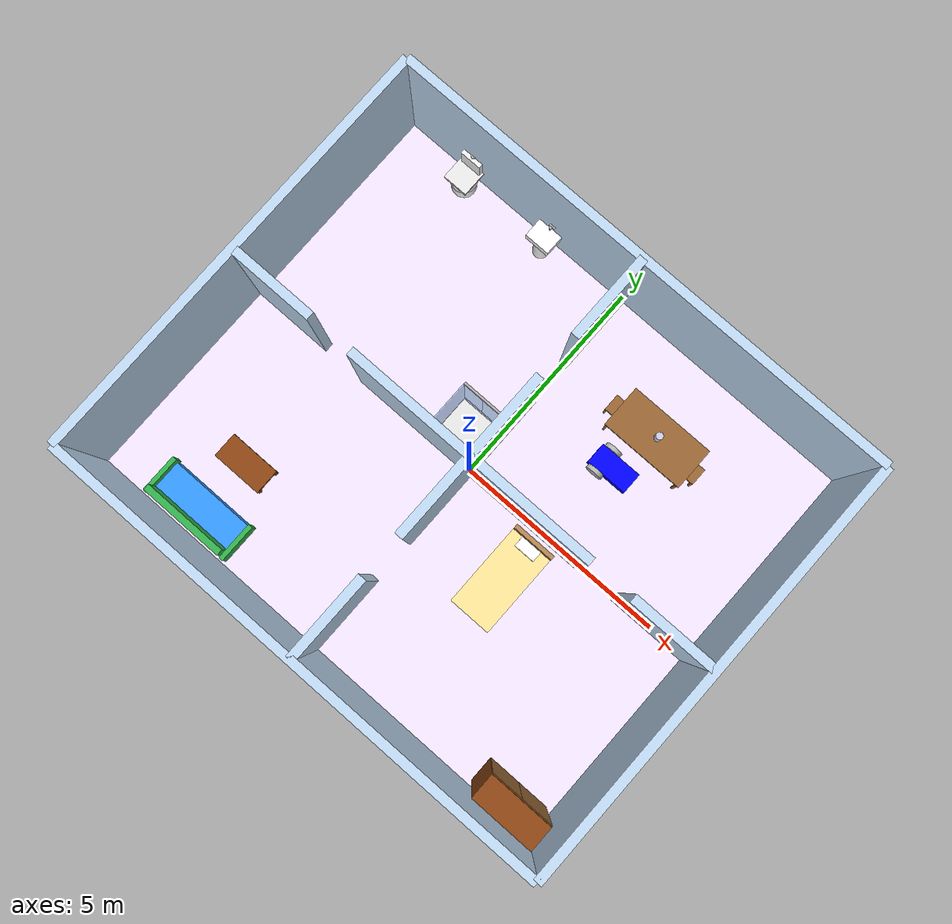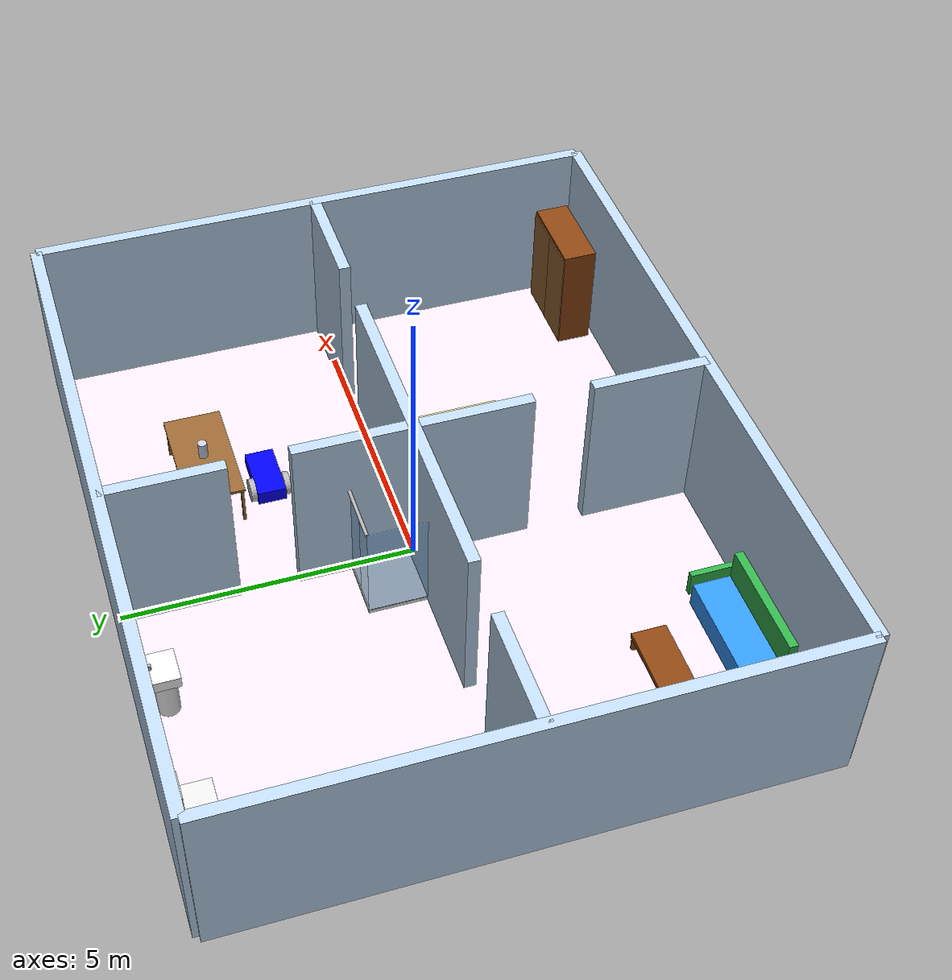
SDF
<?xml version="1.0" ?>
<sdf version="1.8">
<world name="home_world">
<include>
  <uri>file://robot.sdf</uri>
  <name>robot</name>
  <pose>2 2 0 0 0 0</pose>
</include>
  <model name="house">
    <static>true</static>
    <pose>0 0 0 0 0 0</pose>

    <!-- Floor -->
    <link name="floor">
      <pose>0 0 0.01 0 0 0</pose>
      <collision name="floor_collision">
        <geometry>
          <box>
            <size>12 10 0.02</size>
          </box>
        </geometry>
      </collision>
      <visual name="floor_visual">
        <geometry>
          <box>
            <size>12 10 0.02</size>
          </box>
        </geometry>
<material>
  <ambient>0.95 0.9 1 1</ambient>
  <diffuse>0.95 0.9 1 1</diffuse>
  <emissive>0.75 0.6 0.9 1</emissive>
</material>
      </visual>
    </link>

    <!-- Exterior Walls -->
    <!-- North wall -->
    <link name="north_wall">
      <pose>0 5 1.5 0 0 0</pose>
      <collision name="north_wall_collision">
        <geometry>
          <box>
            <size>12 0.2 3</size>
          </box>
        </geometry>
      </collision>
      <visual name="north_wall_visual">
        <geometry>
          <box>
            <size>12 0.2 3</size>
          </box>
        </geometry>
<material>
  <ambient>0.75 0.85 0.95 1</ambient>
  <diffuse>0.75 0.85 0.95 1</diffuse>
  <emissive>0.4 0.55 0.7 1</emissive>
</material>
      </visual>
    </link>

    <!-- South wall -->
    <link name="south_wall">
      <pose>0 -5 1.5 0 0 0</pose>
      <collision name="south_wall_collision">
        <geometry>
          <box>
            <size>12 0.2 3</size>
          </box>
        </geometry>
      </collision>
      <visual name="south_wall_visual">
        <geometry>
          <box>
            <size>12 0.2 3</size>
          </box>
        </geometry>
<material>
  <ambient>0.75 0.85 0.95 1</ambient>
  <diffuse>0.75 0.85 0.95 1</diffuse>
  <emissive>0.4 0.55 0.7 1</emissive>
</material>
      </visual>
    </link>

    <!-- West wall -->
    <link name="west_wall">
      <pose>-6 0 1.5 0 0 0</pose>
      <collision name="west_wall_collision">
        <geometry>
          <box>
            <size>0.2 10 3</size>
          </box>
        </geometry>
      </collision>
      <visual name="west_wall_visual">
        <geometry>
          <box>
            <size>0.2 10 3</size>
          </box>
        </geometry>
<material>
  <ambient>0.75 0.85 0.95 1</ambient>
  <diffuse>0.75 0.85 0.95 1</diffuse>
  <emissive>0.4 0.55 0.7 1</emissive>
</material>
      </visual>
    </link>

    <!-- East wall -->
    <link name="east_wall">
      <pose>6 0 1.5 0 0 0</pose>
      <collision name="east_wall_collision">
        <geometry>
          <box>
            <size>0.2 10 3</size>
          </box>
        </geometry>
      </collision>
      <visual name="east_wall_visual">
        <geometry>
          <box>
            <size>0.2 10 3</size>
          </box>
        </geometry>
<material>
  <ambient>0.75 0.85 0.95 1</ambient>
  <diffuse>0.75 0.85 0.95 1</diffuse>
  <emissive>0.4 0.55 0.7 1</emissive>
</material>
      </visual>
    </link>

    <!-- Interior Walls -->
    <!-- Vertical divider (splits house left/right) -->
<link name="vertical_divider_top_part1">
  <pose>0 4.0 1.5 0 0 0</pose>

  <collision name="vertical_divider_top_part1_collision">
    <geometry>
      <box>
        <size>0.2 2 3</size>
      </box>
    </geometry>
  </collision>

  <visual name="vertical_divider_top_part1_visual">
    <geometry>
      <box>
        <size>0.2 2 3</size>
      </box>
    </geometry>
<material>
  <ambient>0.75 0.85 0.95 1</ambient>
  <diffuse>0.75 0.85 0.95 1</diffuse>
  <emissive>0.4 0.55 0.7 1</emissive>
</material>
  </visual>
</link>
<link name="vertical_divider_top_part2">
  <pose>0 1.0 1.5 0 0 0</pose>

  <collision name="vertical_divider_top_part2_collision">
    <geometry>
      <box>
        <size>0.2 2 3</size>
      </box>
    </geometry>
  </collision>

  <visual name="vertical_divider_top_part2_visual">
    <geometry>
      <box>
        <size>0.2 2 3</size>
      </box>
    </geometry>
<material>
  <ambient>0.75 0.85 0.95 1</ambient>
  <diffuse>0.75 0.85 0.95 1</diffuse>
  <emissive>0.4 0.55 0.7 1</emissive>
</material>
  </visual>
</link>
<link name="vertical_divider_bottom_part1">
  <pose>0 -1.0 1.5 0 0 0</pose>

  <collision name="vertical_divider_bottom_part1_collision">
    <geometry>
      <box>
        <size>0.2 2 3</size>
      </box>
    </geometry>
  </collision>

  <visual name="vertical_divider_bottom_part1_visual">
    <geometry>
      <box>
        <size>0.2 2 3</size>
      </box>
    </geometry>
<material>
  <ambient>0.75 0.85 0.95 1</ambient>
  <diffuse>0.75 0.85 0.95 1</diffuse>
  <emissive>0.4 0.55 0.7 1</emissive>
</material>
  </visual>
</link>
<link name="vertical_divider_bottom_part2">
  <pose>0 -4.0 1.5 0 0 0</pose>

  <collision name="vertical_divider_bottom_part2_collision">
    <geometry>
      <box>
        <size>0.2 2 3</size>
      </box>
    </geometry>
  </collision>

  <visual name="vertical_divider_bottom_part2_visual">
    <geometry>
      <box>
        <size>0.2 2 3</size>
      </box>
    </geometry>
<material>
  <ambient>0.75 0.85 0.95 1</ambient>
  <diffuse>0.75 0.85 0.95 1</diffuse>
  <emissive>0.4 0.55 0.7 1</emissive>
</material>
  </visual>
</link>

    <!-- Horizontal divider left side (between bedroom and bathroom) -->
<link name="horizontal_divider_left_part1">
  <pose>-5 0 1.5 0 0 0</pose>

  <collision name="horizontal_divider_left_part1_collision">
    <geometry>
      <box>
        <size>2 0.2 3</size>
      </box>
    </geometry>
  </collision>

  <visual name="horizontal_divider_left_part1_visual">
    <geometry>
      <box>
        <size>2 0.2 3</size>
      </box>
    </geometry>
<material>
  <ambient>0.75 0.85 0.95 1</ambient>
  <diffuse>0.75 0.85 0.95 1</diffuse>
  <emissive>0.4 0.55 0.7 1</emissive>
</material>
  </visual>
</link>

<link name="horizontal_divider_left_part2">
  <pose>-1.5 0 1.5 0 0 0</pose>

  <collision name="horizontal_divider_left_part2_collision">
    <geometry>
      <box>
        <size>3 0.2 3</size>
      </box>
    </geometry>
  </collision>

  <visual name="horizontal_divider_left_part2_visual">
    <geometry>
      <box>
        <size>3 0.2 3</size>
      </box>
    </geometry>
<material>
  <ambient>0.75 0.85 0.95 1</ambient>
  <diffuse>0.75 0.85 0.95 1</diffuse>
  <emissive>0.4 0.55 0.7 1</emissive>
</material>
  </visual>
</link>

    <!-- Horizontal divider right side (between living room and study) -->
<link name="horizontal_divider_right_part1">
  <pose>1.5 0 1.5 0 0 0</pose>

  <collision name="horizontal_divider_right_part1_collision">
    <geometry>
      <box>
        <size>3 0.2 3</size>
      </box>
    </geometry>
  </collision>

  <visual name="horizontal_divider_right_part1_visual">
    <geometry>
      <box>
        <size>3 0.2 3</size>
      </box>
    </geometry>
<material>
  <ambient>0.75 0.85 0.95 1</ambient>
  <diffuse>0.75 0.85 0.95 1</diffuse>
  <emissive>0.4 0.55 0.7 1</emissive>
</material>
  </visual>
</link>
<link name="horizontal_divider_right_part2">
  <pose>5 0 1.5 0 0 0</pose>

  <collision name="horizontal_divider_right_part2_collision">
    <geometry>
      <box>
        <size>2 0.2 3</size>
      </box>
    </geometry>
  </collision>

  <visual name="horizontal_divider_right_part2_visual">
    <geometry>
      <box>
        <size>2 0.2 3</size>
      </box>
    </geometry>
<material>
  <ambient>0.75 0.85 0.95 1</ambient>
  <diffuse>0.75 0.85 0.95 1</diffuse>
  <emissive>0.4 0.55 0.7 1</emissive>
</material>
  </visual>
</link>

<!-- Dining Table -->
<link name="dining_table">
  <pose>2.5 3 0.75 0 0 0</pose>

  <!-- Tabletop -->
  <collision name="tabletop_collision">
    <geometry><box><size>2 1 0.05</size></box></geometry>
  </collision>
  <visual name="tabletop_visual">
    <geometry><box><size>2 1 0.05</size></box></geometry>
    <material><ambient>0.6 0.4 0.2 1</ambient><diffuse>0.6 0.4 0.2 1</diffuse></material>
  </visual>

  <!-- Table legs -->
  <collision name="leg1_collision">
    <pose>0.95 0.45 -0.375 0 0 0</pose>
    <geometry><box><size>0.05 0.05 0.75</size></box></geometry>
  </collision>
  <visual name="leg1_visual">
    <pose>0.95 0.45 -0.375 0 0 0</pose>
    <geometry><box><size>0.05 0.05 0.75</size></box></geometry>
    <material><ambient>0.6 0.4 0.2 1</ambient><diffuse>0.6 0.4 0.2 1</diffuse></material>
  </visual>

  <collision name="leg2_collision">
    <pose>0.95 -0.45 -0.375 0 0 0</pose>
    <geometry><box><size>0.05 0.05 0.75</size></box></geometry>
  </collision>
  <visual name="leg2_visual">
    <pose>0.95 -0.45 -0.375 0 0 0</pose>
    <geometry><box><size>0.05 0.05 0.75</size></box></geometry>
    <material><ambient>0.6 0.4 0.2 1</ambient><diffuse>0.6 0.4 0.2 1</diffuse></material>
  </visual>

  <collision name="leg3_collision">
    <pose>-0.95 0.45 -0.375 0 0 0</pose>
    <geometry><box><size>0.05 0.05 0.75</size></box></geometry>
  </collision>
  <visual name="leg3_visual">
    <pose>-0.95 0.45 -0.375 0 0 0</pose>
    <geometry><box><size>0.05 0.05 0.75</size></box></geometry>
    <material><ambient>0.6 0.4 0.2 1</ambient><diffuse>0.6 0.4 0.2 1</diffuse></material>
  </visual>

  <collision name="leg4_collision">
    <pose>-0.95 -0.45 -0.375 0 0 0</pose>
    <geometry><box><size>0.05 0.05 0.75</size></box></geometry>
  </collision>
  <visual name="leg4_visual">
    <pose>-0.95 -0.45 -0.375 0 0 0</pose>
    <geometry><box><size>0.05 0.05 0.75</size></box></geometry>
    <material><ambient>0.6 0.4 0.2 1</ambient><diffuse>0.6 0.4 0.2 1</diffuse></material>
  </visual>
</link>

<!-- Stool 1 -->
<link name="stool1">
  <pose>1.5 3 0.45 0 0 0</pose>

  <!-- Seat -->
  <collision name="seat_collision">
    <geometry><box><size>0.4 0.4 0.05</size></box></geometry>
  </collision>
  <visual name="seat_visual">
    <geometry><box><size>0.4 0.4 0.05</size></box></geometry>
    <material><ambient>0.6 0.4 0.2 1</ambient><diffuse>0.6 0.4 0.2 1</diffuse></material>
  </visual>

  <!-- Legs -->
  <collision name="leg1_collision">
    <pose>0.175 0.175 -0.225 0 0 0</pose>
    <geometry><box><size>0.05 0.05 0.45</size></box></geometry>
  </collision>
  <visual name="leg1_visual">
    <pose>0.175 0.175 -0.225 0 0 0</pose>
    <geometry><box><size>0.05 0.05 0.45</size></box></geometry>
    <material><ambient>0.6 0.4 0.2 1</ambient><diffuse>0.6 0.4 0.2 1</diffuse></material>
  </visual>

  <collision name="leg2_collision">
    <pose>0.175 -0.175 -0.225 0 0 0</pose>
    <geometry><box><size>0.05 0.05 0.45</size></box></geometry>
  </collision>
  <visual name="leg2_visual">
    <pose>0.175 -0.175 -0.225 0 0 0</pose>
    <geometry><box><size>0.05 0.05 0.45</size></box></geometry>
    <material><ambient>0.6 0.4 0.2 1</ambient><diffuse>0.6 0.4 0.2 1</diffuse></material>
  </visual>

  <collision name="leg3_collision">
    <pose>-0.175 0.175 -0.225 0 0 0</pose>
    <geometry><box><size>0.05 0.05 0.45</size></box></geometry>
  </collision>
  <visual name="leg3_visual">
    <pose>-0.175 0.175 -0.225 0 0 0</pose>
    <geometry><box><size>0.05 0.05 0.45</size></box></geometry>
    <material><ambient>0.6 0.4 0.2 1</ambient><diffuse>0.6 0.4 0.2 1</diffuse></material>
  </visual>

  <collision name="leg4_collision">
    <pose>-0.175 -0.175 -0.225 0 0 0</pose>
    <geometry><box><size>0.05 0.05 0.45</size></box></geometry>
  </collision>
  <visual name="leg4_visual">
    <pose>-0.175 -0.175 -0.225 0 0 0</pose>
    <geometry><box><size>0.05 0.05 0.45</size></box></geometry>
    <material><ambient>0.6 0.4 0.2 1</ambient><diffuse>0.6 0.4 0.2 1</diffuse></material>
  </visual>
</link>

<!-- Stool 2 -->
<link name="stool2">
  <pose>3.5 3 0.45 0 0 0</pose>

  <!-- Seat -->
  <collision name="seat_collision">
    <geometry><box><size>0.4 0.4 0.05</size></box></geometry>
  </collision>
  <visual name="seat_visual">
    <geometry><box><size>0.4 0.4 0.05</size></box></geometry>
    <material><ambient>0.6 0.4 0.2 1</ambient><diffuse>0.6 0.4 0.2 1</diffuse></material>
  </visual>

  <!-- Legs -->
  <collision name="leg1_collision">
    <pose>0.175 0.175 -0.225 0 0 0</pose>
    <geometry><box><size>0.05 0.05 0.45</size></box></geometry>
  </collision>
  <visual name="leg1_visual">
    <pose>0.175 0.175 -0.225 0 0 0</pose>
    <geometry><box><size>0.05 0.05 0.45</size></box></geometry>
    <material><ambient>0.6 0.4 0.2 1</ambient><diffuse>0.6 0.4 0.2 1</diffuse></material>
  </visual>

  <collision name="leg2_collision">
    <pose>0.175 -0.175 -0.225 0 0 0</pose>
    <geometry><box><size>0.05 0.05 0.45</size></box></geometry>
  </collision>
  <visual name="leg2_visual">
    <pose>0.175 -0.175 -0.225 0 0 0</pose>
    <geometry><box><size>0.05 0.05 0.45</size></box></geometry>
    <material><ambient>0.6 0.4 0.2 1</ambient><diffuse>0.6 0.4 0.2 1</diffuse></material>
  </visual>

  <collision name="leg3_collision">
    <pose>-0.175 0.175 -0.225 0 0 0</pose>
    <geometry><box><size>0.05 0.05 0.45</size></box></geometry>
  </collision>
  <visual name="leg3_visual">
    <pose>-0.175 0.175 -0.225 0 0 0</pose>
    <geometry><box><size>0.05 0.05 0.45</size></box></geometry>
    <material><ambient>0.6 0.4 0.2 1</ambient><diffuse>0.6 0.4 0.2 1</diffuse></material>
  </visual>

  <collision name="leg4_collision">
    <pose>-0.175 -0.175 -0.225 0 0 0</pose>
    <geometry><box><size>0.05 0.05 0.45</size></box></geometry>
  </collision>
  <visual name="leg4_visual">
    <pose>-0.175 -0.175 -0.225 0 0 0</pose>
    <geometry><box><size>0.05 0.05 0.45</size></box></geometry>
    <material><ambient>0.6 0.4 0.2 1</ambient><diffuse>0.6 0.4 0.2 1</diffuse></material>
  </visual>
</link>

<link name="vase">
  <!-- Tabletop top = 0.75 + 0.05/2 = 0.775 -->
  <!-- Vase center = tabletop top + vase height/2 = 0.775 + 0.15 = 0.925 -->
  <pose>2.5 3 0.925 0 0 0</pose>
  <collision name="vase_collision">
    <geometry>
      <cylinder>
        <radius>0.08</radius>
        <length>0.3</length>
      </cylinder>
    </geometry>
  </collision>
  <visual name="vase_visual">
    <geometry>
      <cylinder>
        <radius>0.08</radius>
        <length>0.3</length>
      </cylinder>
    </geometry>
    <material>
      <ambient>0.8 0.8 0.9 1</ambient>
      <diffuse>0.8 0.8 0.9 1</diffuse>
    </material>
  </visual>
</link>
<link name="sofa">
  <pose>-3.6 -4.3 0.45 0 0 0</pose> <!-- sofa position -->

  <!-- Seat cushion -->
  <collision name="seat_collision">
    <pose>0 0 0 0 0 0</pose>
    <geometry>
      <box><size>2 0.8 0.45</size></box>
    </geometry>
  </collision>
  <visual name="seat_visual">
    <pose>0 0 0 0 0 0</pose>
    <geometry>
      <box><size>2 0.8 0.45</size></box>
    </geometry>
    <material><ambient>0.2 0.6 1 1</ambient><diffuse>0.2 0.6 1 1</diffuse></material>
  </visual>

  <!-- Backrest -->
  <collision name="backrest_collision">
    <pose>0 -0.325 0.45 0 0 0</pose> <!-- origin at seat top -->
    <geometry><box><size>2 0.15 0.65</size></box></geometry> <!-- taller backrest -->
  </collision>
  <visual name="backrest_visual">
    <pose>0 -0.325 0.45 0 0 0</pose>
    <geometry><box><size>2 0.15 0.65</size></box></geometry>
    <material><ambient>0.2 0.7 0.3 1</ambient><diffuse>0.2 0.7 0.3 1</diffuse></material>
  </visual>

  <!-- Left armrest -->
  <collision name="left_armrest_collision">
    <pose>-1.05 0 0.225 0 0 0</pose>
    <geometry><box><size>0.1 0.9 0.45</size></box></geometry>
  </collision>
  <visual name="left_armrest_visual">
    <pose>-1.05 0 0.225 0 0 0</pose>
    <geometry><box><size>0.1 0.9 0.45</size></box></geometry>
    <material><ambient>0.2 0.7 0.3 1</ambient><diffuse>0.2 0.7 0.3 1</diffuse></material>
  </visual>

  <!-- Right armrest -->
  <collision name="right_armrest_collision">
    <pose>1.05 0 0.225 0 0 0</pose>
    <geometry><box><size>0.1 0.9 0.45</size></box></geometry>
  </collision>
  <visual name="right_armrest_visual">
    <pose>1.05 0 0.225 0 0 0</pose>
    <geometry><box><size>0.1 0.9 0.45</size></box></geometry>
    <material><ambient>0.2 0.7 0.3 1</ambient><diffuse>0.2 0.7 0.3 1</diffuse></material>
  </visual>
</link>

<link name="coffee_table">
  <pose>-3.6 -3 0.3 0 0 0</pose> <!-- center of the table -->

  <!-- Tabletop -->
  <collision name="coffee_tabletop_collision">
    <pose>0 0 0 0 0 0</pose>
    <geometry>
      <box><size>1.2 0.6 0.1</size></box>
    </geometry>
  </collision>
  <visual name="coffee_tabletop_visual">
    <pose>0 0 0 0 0 0</pose>
    <geometry>
      <box><size>1.2 0.6 0.1</size></box>
    </geometry>
    <material><ambient>0.55 0.27 0.07 1</ambient><diffuse>0.55 0.27 0.07 1</diffuse></material>
  </visual>

  <!-- Table legs -->
  <collision name="coffee_table_leg1_collision">
    <pose>0.55 0.25 -0.15 0 0 0</pose>
    <geometry><cylinder><radius>0.05</radius><length>0.3</length></cylinder></geometry>
  </collision>
  <visual name="coffee_table_leg1_visual">
    <pose>0.55 0.25 -0.15 0 0 0</pose>
    <geometry><cylinder><radius>0.05</radius><length>0.3</length></cylinder></geometry>
    <material><ambient>0.55 0.27 0.07 1</ambient><diffuse>0.55 0.27 0.07 1</diffuse></material>
  </visual>

  <collision name="coffee_table_leg2_collision">
    <pose>-0.55 0.25 -0.15 0 0 0</pose>
    <geometry><cylinder><radius>0.05</radius><length>0.3</length></cylinder></geometry>
  </collision>
  <visual name="coffee_table_leg2_visual">
    <pose>-0.55 0.25 -0.15 0 0 0</pose>
    <geometry><cylinder><radius>0.05</radius><length>0.3</length></cylinder></geometry>
    <material><ambient>0.55 0.27 0.07 1</ambient><diffuse>0.55 0.27 0.07 1</diffuse></material>
  </visual>

  <collision name="coffee_table_leg3_collision">
    <pose>0.55 -0.25 -0.15 0 0 0</pose>
    <geometry><cylinder><radius>0.05</radius><length>0.3</length></cylinder></geometry>
  </collision>
  <visual name="coffee_table_leg3_visual">
    <pose>0.55 -0.25 -0.15 0 0 0</pose>
    <geometry><cylinder><radius>0.05</radius><length>0.3</length></cylinder></geometry>
    <material><ambient>0.55 0.27 0.07 1</ambient><diffuse>0.55 0.27 0.07 1</diffuse></material>
  </visual>

  <collision name="coffee_table_leg4_collision">
    <pose>-0.55 -0.25 -0.15 0 0 0</pose>
    <geometry><cylinder><radius>0.05</radius><length>0.3</length></cylinder></geometry>
  </collision>
  <visual name="coffee_table_leg4_visual">
    <pose>-0.55 -0.25 -0.15 0 0 0</pose>
    <geometry><cylinder><radius>0.05</radius><length>0.3</length></cylinder></geometry>
    <material><ambient>0.55 0.27 0.07 1</ambient><diffuse>0.55 0.27 0.07 1</diffuse></material>
  </visual>
</link>

<link name="bed">
  <pose>2 -1.3 0.2 0 0 0</pose> <!-- bed base position -->

  <!-- Bed frame -->
  <collision name="bed_frame_collision">
    <pose>0 0 0 0 0 0</pose>
    <geometry>
      <box><size>1 2 0.2</size></box> <!-- width x length x height -->
    </geometry>
  </collision>
  <visual name="bed_frame_visual">
    <pose>0 0 0 0 0 0</pose>
    <geometry>
      <box><size>1 2 0.2</size></box>
    </geometry>
    <material>
      <ambient>0.71 0.53 0.33 1</ambient>
      <diffuse>0.71 0.53 0.33 1</diffuse>
    </material>
  </visual>

  <!-- Bed legs -->
  <collision name="leg1_collision">
    <pose>0.45 0.9 -0.1 0 0 0</pose>
    <geometry><cylinder><radius>0.05</radius><length>0.2</length></cylinder></geometry>
  </collision>
  <visual name="leg1_visual">
    <pose>0.45 0.9 -0.1 0 0 0</pose>
    <geometry><cylinder><radius>0.05</radius><length>0.2</length></cylinder></geometry>
    <material>
      <ambient>0.71 0.53 0.33 1</ambient>
      <diffuse>0.71 0.53 0.33 1</diffuse>
    </material>
  </visual>

  <collision name="leg2_collision">
    <pose>-0.45 0.9 -0.1 0 0 0</pose>
    <geometry><cylinder><radius>0.05</radius><length>0.2</length></cylinder></geometry>
  </collision>
  <visual name="leg2_visual">
    <pose>-0.45 0.9 -0.1 0 0 0</pose>
    <geometry><cylinder><radius>0.05</radius><length>0.2</length></cylinder></geometry>
    <material>
      <ambient>0.71 0.53 0.33 1</ambient>
      <diffuse>0.71 0.53 0.33 1</diffuse>
    </material>
  </visual>

  <collision name="leg3_collision">
    <pose>0.45 -0.9 -0.1 0 0 0</pose>
    <geometry><cylinder><radius>0.05</radius><length>0.2</length></cylinder></geometry>
  </collision>
  <visual name="leg3_visual">
    <pose>0.45 -0.9 -0.1 0 0 0</pose>
    <geometry><cylinder><radius>0.05</radius><length>0.2</length></cylinder></geometry>
    <material>
      <ambient>0.71 0.53 0.33 1</ambient>
      <diffuse>0.71 0.53 0.33 1</diffuse>
    </material>
  </visual>

  <collision name="leg4_collision">
    <pose>-0.45 -0.9 -0.1 0 0 0</pose>
    <geometry><cylinder><radius>0.05</radius><length>0.2</length></cylinder></geometry>
  </collision>
  <visual name="leg4_visual">
    <pose>-0.45 -0.9 -0.1 0 0 0</pose>
    <geometry><cylinder><radius>0.05</radius><length>0.2</length></cylinder></geometry>
    <material>
      <ambient>0.71 0.53 0.33 1</ambient>
      <diffuse>0.71 0.53 0.33 1</diffuse>
    </material>
  </visual>

  <!-- Mattress -->
  <collision name="mattress_collision">
    <pose>0 0 0.25 0 0 0</pose> <!-- sits on top of frame -->
    <geometry>
      <box><size>1 2 0.3</size></box>
    </geometry>
  </collision>
  <visual name="mattress_visual">
    <pose>0 0 0.25 0 0 0</pose>
    <geometry>
      <box><size>1 2 0.3</size></box>
    </geometry>
    <material>
      <ambient>1 0.9 0.6 1</ambient>
      <diffuse>1 0.9 0.6 1</diffuse>
      <emissive>0.7 0.85 1 1</emissive>
    </material>
  </visual>

  <!-- Pillow -->
  <collision name="pillow_collision">
    <pose>0 0.85 0.4 0 0 0</pose>
    <geometry>
      <box><size>0.5 0.3 0.1</size></box>
    </geometry>
  </collision>
  <visual name="pillow_visual">
    <pose>0 0.85 0.4 0 0 0</pose>
    <geometry><box><size>0.5 0.3 0.1</size></box></geometry>
    <material>
      <ambient>1 1 1 1</ambient>
      <diffuse>1 1 1 1</diffuse>
    </material>
  </visual>

  <!-- Headboard -->
  <collision name="headboard_collision">
    <pose>0 1.1 0.4 0 0 0</pose> <!-- behind mattress -->
    <geometry><box><size>1 0.1 0.5</size></box></geometry>
  </collision>
  <visual name="headboard_visual">
    <pose>0 1 0.55 0 0 0</pose>
    <geometry><box><size>1 0.1 0.5</size></box></geometry>
    <material>
      <ambient>0.71 0.53 0.33 1</ambient>
      <diffuse>0.71 0.53 0.33 1</diffuse>
    </material>
  </visual>
</link>

<link name="wardrobe">
  <pose>5 -4.5 1 0 0 0</pose>

  <!-- Main body -->
  <collision name="wardrobe_collision">
    <geometry>
      <box>
        <size>1.5 0.6 2</size> <!-- width, depth, height -->
      </box>
    </geometry>
  </collision>

  <visual name="wardrobe_visual">
    <geometry>
      <box>
        <size>1.5 0.6 2</size>
      </box>
    </geometry>
    <material><ambient>0.55 0.27 0.07 1</ambient><diffuse>0.55 0.27 0.07 1</diffuse></material>
  </visual>

  <!-- Left door -->
  <collision name="wardrobe_left_door_collision">
    <pose>-0.375 0.31 0 0 0 0</pose>
    <geometry>
      <box><size>0.75 0.02 1.9</size></box>
    </geometry>
  </collision>

  <visual name="wardrobe_left_door_visual">
    <pose>-0.375 0.31 0 0 0 0</pose>
    <geometry>
      <box><size>0.75 0.02 1.9</size></box>
    </geometry>
    <material><ambient>0.6 0.4 0.2 1</ambient><diffuse>0.6 0.4 0.2 1</diffuse></material>
  </visual>

  <!-- Right door -->
  <collision name="wardrobe_right_door_collision">
    <pose>0.375 0.31 0 0 0 0</pose>
    <geometry>
      <box><size>0.75 0.02 1.9</size></box>
    </geometry>
  </collision>

  <visual name="wardrobe_right_door_visual">
    <pose>0.375 0.31 0 0 0 0</pose>
    <geometry>
      <box><size>0.75 0.02 1.9</size></box>
    </geometry>
    <material><ambient>0.6 0.4 0.2 1</ambient><diffuse>0.6 0.4 0.2 1</diffuse></material>
  </visual>

</link>

<link name="toilet">
  <!-- Position near a wall (change as needed) -->
  <pose>-4.2 4.6 0 0 0 3.1416</pose>

  <!-- Base -->
  <collision name="toilet_base_collision">
    <pose>0 0 0.2 0 0 0</pose>
    <geometry>
      <cylinder>
        <radius>0.28</radius>
        <length>0.4</length>
      </cylinder>
    </geometry>
  </collision>

  <visual name="toilet_base_visual">
    <pose>0 0 0.2 0 0 0</pose>
    <geometry>
      <cylinder>
        <radius>0.28</radius>
        <length>0.4</length>
      </cylinder>
    </geometry>
    <material>
      <ambient>0.95 0.95 0.95 1</ambient>
      <diffuse>0.95 0.95 0.95 1</diffuse>
    </material>
  </visual>

  <!-- Bowl -->
  <collision name="toilet_bowl_collision">
    <pose>0 0 0.48 0 0 0</pose>
    <geometry>
      <cylinder>
        <radius>0.3</radius>
        <length>0.2</length>
      </cylinder>
    </geometry>
  </collision>

  <visual name="toilet_bowl_visual">
    <pose>0 0 0.48 0 0 0</pose>
    <geometry>
      <cylinder>
        <radius>0.3</radius>
        <length>0.2</length>
      </cylinder>
    </geometry>
    <material>
      <ambient>1 1 1 1</ambient>
      <diffuse>1 1 1 1</diffuse>
    </material>
  </visual>

  <!-- Seat -->
  <collision name="toilet_seat_collision">
    <pose>0 0 0.6 0 0 0</pose>
    <geometry>
      <box>
        <size>0.6 0.6 0.05</size>
      </box>
    </geometry>
  </collision>

  <visual name="toilet_seat_visual">
    <pose>0 0 0.6 0 0 0</pose>
    <geometry>
      <box>
        <size>0.6 0.6 0.05</size>
      </box>
    </geometry>
    <material>
      <ambient>0.9 0.9 0.9 1</ambient>
      <diffuse>0.9 0.9 0.9 1</diffuse>
    </material>
  </visual>

  <!-- Tank -->
  <collision name="toilet_tank_collision">
    <pose>0 -0.3 0.8 0 0 0</pose>
    <geometry>
      <box>
        <size>0.5 0.2 0.6</size>
      </box>
    </geometry>
  </collision>

  <visual name="toilet_tank_visual">
    <pose>0 -0.3 0.8 0 0 0</pose>
    <geometry>
      <box>
        <size>0.5 0.2 0.6</size>
      </box>
    </geometry>
    <material>
      <ambient>0.95 0.95 0.95 1</ambient>
      <diffuse>0.95 0.95 0.95 1</diffuse>
    </material>
  </visual>
<!-- Lid -->
<collision name="toilet_lid_collision">
  <pose>0 0 0.63 0 0 0</pose>
  <geometry>
    <box>
      <size>0.6 0.6 0.03</size>
    </box>
  </geometry>
</collision>

<visual name="toilet_lid_visual">
  <pose>0 0 0.63 0 0 0</pose>
  <geometry>
    <box>
      <size>0.6 0.6 0.03</size>
    </box>
  </geometry>
  <material>
    <ambient>0.92 0.92 0.92 1</ambient>
    <diffuse>0.92 0.92 0.92 1</diffuse>
  </material>
</visual>
<!-- Flush button -->
<collision name="toilet_button_collision">
  <pose>0 -0.3 1.12 0 0 0</pose>
  <geometry>
    <cylinder>
      <radius>0.05</radius>
      <length>0.04</length>
    </cylinder>
  </geometry>
</collision>

<visual name="toilet_button_visual">
  <pose>0 -0.3 1.12 0 0 0</pose>
  <geometry>
    <cylinder>
      <radius>0.05</radius>
      <length>0.04</length>
    </cylinder>
  </geometry>
  <material>
    <ambient>0.8 0.8 0.8 1</ambient>
    <diffuse>0.8 0.8 0.8 1</diffuse>
  </material>
</visual>

</link>

<link name="sink">
  <!-- Place near wall -->
  <pose>-2 4.6 0 0 0 0</pose>

  <!-- Pedestal -->
  <collision name="sink_pedestal_collision">
    <pose>0 0 0.45 0 0 0</pose>
    <geometry>
      <cylinder>
        <radius>0.18</radius>
        <length>0.9</length>
      </cylinder>
    </geometry>
  </collision>

  <visual name="sink_pedestal_visual">
    <pose>0 0 0.45 0 0 0</pose>
    <geometry>
      <cylinder>
        <radius>0.18</radius>
        <length>0.9</length>
      </cylinder>
    </geometry>
    <material>
      <ambient>0.95 0.95 0.95 1</ambient>
      <diffuse>0.95 0.95 0.95 1</diffuse>
    </material>
  </visual>

  <!-- Basin -->
  <collision name="sink_basin_collision">
    <pose>0 0 0.95 0 0 0</pose>
    <geometry>
      <box>
        <size>0.6 0.45 0.2</size>
      </box>
    </geometry>
  </collision>

  <visual name="sink_basin_visual">
    <pose>0 0 0.95 0 0 0</pose>
    <geometry>
      <box>
        <size>0.6 0.45 0.2</size>
      </box>
    </geometry>
    <material>
      <ambient>1 1 1 1</ambient>
      <diffuse>1 1 1 1</diffuse>
    </material>
  </visual>

  <!-- Faucet body -->
  <collision name="sink_faucet_body_collision">
    <pose>0 0.2 1.05 0 0 0</pose>
    <geometry>
      <cylinder>
        <radius>0.03</radius>
        <length>0.2</length>
      </cylinder>
    </geometry>
  </collision>

  <visual name="sink_faucet_body_visual">
    <pose>0 0.2 1.05 0 0 0</pose>
    <geometry>
      <cylinder>
        <radius>0.03</radius>
        <length>0.2</length>
      </cylinder>
    </geometry>
    <material>
      <ambient>0.7 0.7 0.7 1</ambient>
      <diffuse>0.7 0.7 0.7 1</diffuse>
    </material>
  </visual>

  <!-- Faucet spout -->
  <collision name="sink_faucet_spout_collision">
    <pose>0 0.27 1.05 0 1.57 0</pose>
    <geometry>
      <cylinder>
        <radius>0.025</radius>
        <length>0.15</length>
      </cylinder>
    </geometry>
  </collision>

  <visual name="sink_faucet_spout_visual">
    <pose>0 0.27 1.05 0 1.57 0</pose>
    <geometry>
      <cylinder>
        <radius>0.025</radius>
        <length>0.15</length>
      </cylinder>
    </geometry>
    <material>
      <ambient>0.75 0.75 0.75 1</ambient>
      <diffuse>0.75 0.75 0.75 1</diffuse>
    </material>
  </visual>
</link>

<link name="shower">
  <pose>-0.6 0.6 0 0 0 0</pose>

  <!-- Shower base -->
  <collision name="shower_base_collision">
    <pose>0 0 0.05 0 0 0</pose>
    <geometry>
      <box>
        <size>1 1 0.1</size>
      </box>
    </geometry>
  </collision>

  <visual name="shower_base_visual">
    <pose>0 0 0.05 0 0 0</pose>
    <geometry>
      <box>
        <size>1 1 0.1</size>
      </box>
    </geometry>
    <material>
      <ambient>0.9 0.9 0.9 1</ambient>
      <diffuse>0.9 0.9 0.9 1</diffuse>
    </material>
  </visual>

  <!-- Curtain rod -->
  <collision name="shower_rod_collision">
    <pose>0 0.5 1.9 0 1.57 0</pose>
    <geometry>
      <cylinder>
        <radius>0.03</radius>
        <length>1</length>
      </cylinder>
    </geometry>
  </collision>

  <visual name="shower_rod_visual">
    <pose>0 0.5 1.9 0 1.57 0</pose>
    <geometry>
      <cylinder>
        <radius>0.03</radius>
        <length>1</length>
      </cylinder>
    </geometry>
    <material>
      <ambient>0.7 0.7 0.7 1</ambient>
      <diffuse>0.7 0.7 0.7 1</diffuse>
    </material>
  </visual>

  <!-- Left curtain -->
  <collision name="curtain_left_collision">
    <pose>-0.25 0.48 1 0 0 0</pose>
    <geometry>
      <box>
        <size>0.5 0.02 1.8</size>
      </box>
    </geometry>
  </collision>

  <visual name="curtain_left_visual">
    <pose>-0.25 0.48 1 0 0 0</pose>
    <geometry>
      <box>
        <size>0.5 0.02 1.8</size>
      </box>
    </geometry>
    <material>
      <ambient>0.6 0.8 1 0.6</ambient>
      <diffuse>0.6 0.8 1 0.6</diffuse>
    </material>
  </visual>

  <!-- Right curtain -->
  <collision name="curtain_right_collision">
    <pose>0.25 0.48 1 0 0 0</pose>
    <geometry>
      <box>
        <size>0.5 0.02 1.8</size>
      </box>
    </geometry>
  </collision>

  <visual name="curtain_right_visual">
    <pose>0.25 0.48 1 0 0 0</pose>
    <geometry>
      <box>
        <size>0.5 0.02 1.8</size>
      </box>
    </geometry>
    <material>
      <ambient>0.6 0.8 1 0.6</ambient>
      <diffuse>0.6 0.8 1 0.6</diffuse>
    </material>
  </visual>
<collision name="curtain_side_collision">
  <pose>-0.5 0 1 0 0 1.57</pose>
  <geometry>
    <box>
      <size>1 0.02 1.8</size>
    </box>
  </geometry>
</collision>

<visual name="curtain_side_visual">
  <pose>-0.5 0 1 0 0 1.57</pose>
  <geometry>
    <box>
      <size>1 0.02 1.8</size>
    </box>
  </geometry>
  <material>
    <ambient>0.6 0.8 1 0.6</ambient>
    <diffuse>0.6 0.8 1 0.6</diffuse>
  </material>
</visual>
</link>
  </model>
</world>
</sdf>

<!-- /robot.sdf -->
<sdf version="1.10">
  <model name="homecleanerbot" canonical_link="base_link">
    <pose>0 0 0 0 0 0</pose>

    <!-- ================= BASE LINK ================= -->
    <link name="base_link">
      <pose relative_to="__model__">0.25 0 0.2 0 0 0</pose>

      <inertial>
        <mass>1.0</mass>
        <inertia>
          <ixx>0.026042</ixx>
          <ixy>0</ixy>
          <ixz>0</ixz>
          <iyy>0.087891</iyy>
          <iyz>0</iyz>
          <izz>0.109375</izz>
        </inertia>
      </inertial>

      <visual name="visual">
        <geometry>
          <box>
            <size>1.0 0.5 0.25</size>
          </box>
        </geometry>
        <material>
          <ambient>0 0 1 1</ambient>
          <diffuse>0 0 1 1</diffuse>
          <specular>0 0 1 1</specular>
        </material>
      </visual>

      <collision name="collision">
        <geometry>
          <box>
            <size>1.0 0.5 0.25</size>
          </box>
        </geometry>
      </collision>

    </link>
<link name="laser_link">
  <pose relative_to="base_link">0.8 0 0.3 0 0 0</pose>

  <sensor name="lidar" type="gpu_lidar">
    <topic>/scan</topic>
    <update_rate>10</update_rate>
    <ignition_frame_id>laser_link</ignition_frame_id>

    <ray>
      <scan>
        <horizontal>
          <samples>360</samples>
          <min_angle>-1.396263</min_angle>
          <max_angle>1.396263</max_angle>
        </horizontal>
      </scan>
      <range>
        <min>0.12</min>
        <max>8.0</max>
      </range>
    </ray>

    <visualize>true</visualize>
  </sensor>
</link>
    <!-- ================= LEFT WHEEL ================= -->
    <link name="left_wheel">
      <pose relative_to="base_link">-0.25 0.3 0 -1.5707 0 0</pose>
      <inertial>
        <mass>1.0</mass>
        <inertia>
          <ixx>0.010833</ixx>
          <iyy>0.010833</iyy>
          <izz>0.02</izz>
        </inertia>
      </inertial>
      <visual name="visual">
        <geometry>
          <cylinder>
            <radius>0.2</radius>
            <length>0.1</length>
          </cylinder>
        </geometry>
      </visual>
      <collision name="collision">
        <geometry>
          <cylinder>
            <radius>0.2</radius>
            <length>0.1</length>
          </cylinder>
        </geometry>
      </collision>
    </link>

    <!-- ================= RIGHT WHEEL ================= -->
    <link name="right_wheel">
      <pose relative_to="base_link">-0.25 -0.3 0 -1.5707 0 0</pose>
      <inertial>
        <mass>1.0</mass>
        <inertia>
          <ixx>0.010833</ixx>
          <iyy>0.010833</iyy>
          <izz>0.02</izz>
        </inertia>
      </inertial>
      <visual name="visual">
        <geometry>
          <cylinder>
            <radius>0.2</radius>
            <length>0.1</length>
          </cylinder>
        </geometry>
      </visual>
      <collision name="collision">
        <geometry>
          <cylinder>
            <radius>0.2</radius>
            <length>0.1</length>
          </cylinder>
        </geometry>
      </collision>
    </link>

    <!-- ================= CASTER ================= -->

    <link name="caster">
      <pose relative_to="base_link">0.4 0 -0.1 0 0 0</pose>
      <inertial>
        <mass>0.5</mass>
        <inertia>
          <ixx>0.004</ixx>
          <iyy>0.004</iyy>
          <izz>0.004</izz>
        </inertia>
      </inertial>
      <visual name="visual">
        <geometry>
          <sphere>
            <radius>0.1</radius>
          </sphere>
        </geometry>
      </visual>
      <collision name="collision">
        <geometry>
          <sphere>
            <radius>0.1</radius>
          </sphere>
        </geometry>
      </collision>
    </link>

    <!-- ================= JOINTS ================= -->
    <joint name="left_wheel_joint" type="revolute">
      <parent>base_link</parent>
      <child>left_wheel</child>
      <axis>
        <xyz expressed_in="__model__">0 1 0</xyz>
      </axis>
    </joint>

    <joint name="right_wheel_joint" type="revolute">
      <parent>base_link</parent>
      <child>right_wheel</child>
      <axis>
        <xyz expressed_in="__model__">0 1 0</xyz>
      </axis>
    </joint>

    <joint name="caster_joint" type="ball">
      <parent>base_link</parent>
      <child>caster</child>
    </joint>
<joint name="laser_joint" type="fixed">
  <parent>base_link</parent>
  <child>laser_link</child>
</joint>
    <!-- ================= DIFF DRIVE ================= -->
    <plugin
      filename="gz-sim-diff-drive-system"
      name="gz::sim::systems::DiffDrive">
      <left_joint>left_wheel_joint</left_joint>
      <right_joint>right_wheel_joint</right_joint>
      <wheel_separation>0.6</wheel_separation>
      <wheel_radius>0.2</wheel_radius>
      <odom_publish_frequency>50</odom_publish_frequency>
      <topic>cmd_vel</topic>
      <odom_topic>odom</odom_topic>
      <frame_id>odom</frame_id>
      <child_frame_id>base_link</child_frame_id>
    </plugin>

    <!-- ================= SENSORS SYSTEM ================= -->
    <plugin
      filename="gz-sim-sensors-system"
      name="gz::sim::systems::Sensors">
      <render_engine>ogre2</render_engine>
    </plugin>
  </model>
</sdf>
